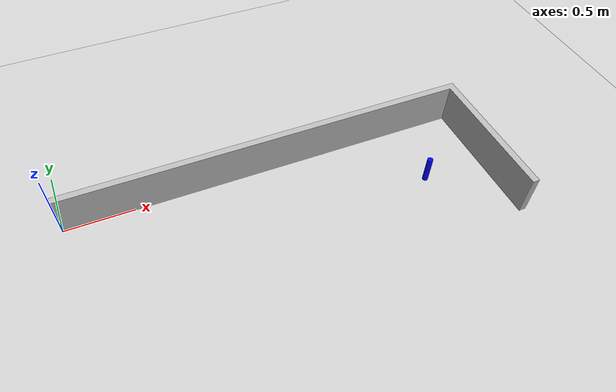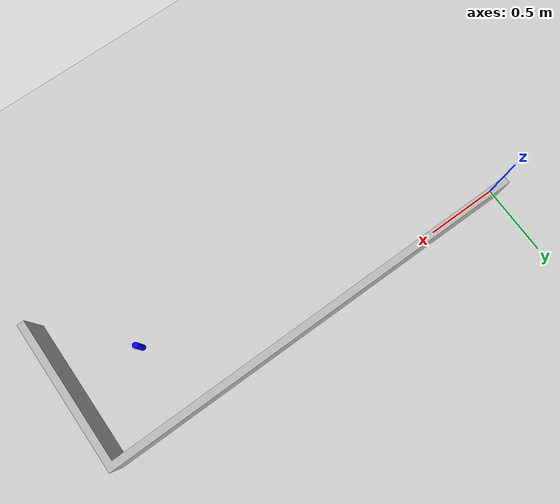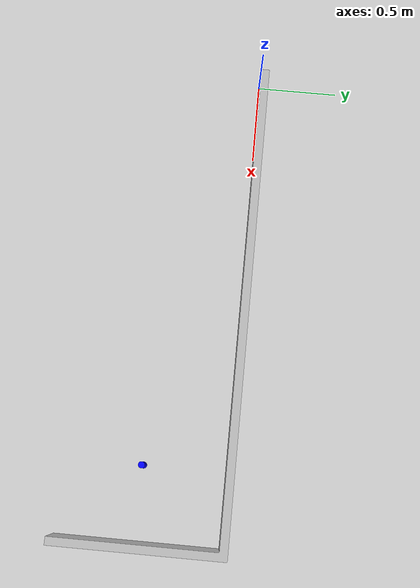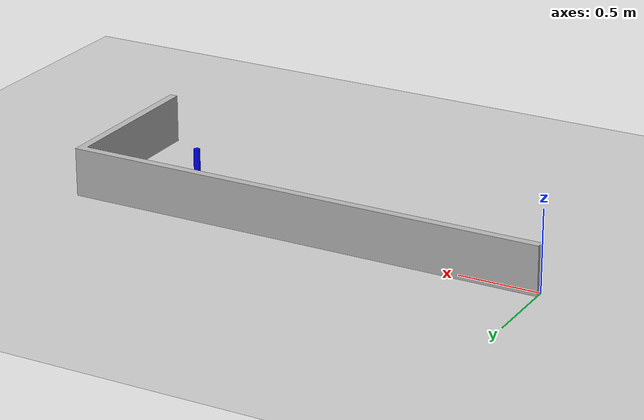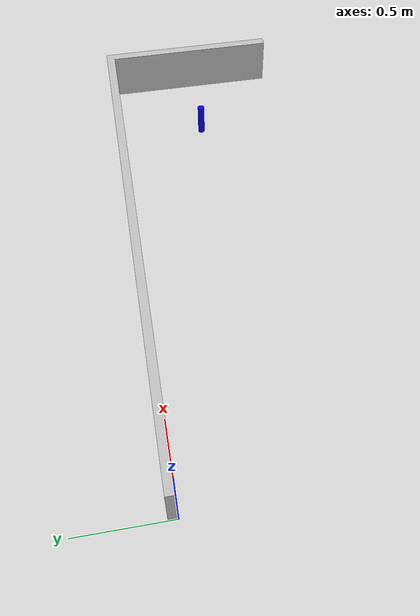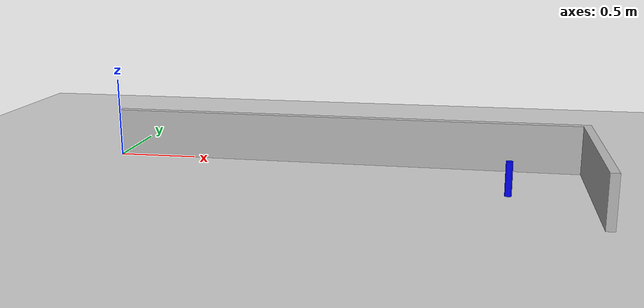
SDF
<?xml version="1.0"?>
<sdf version="1.6">
  <world name="default">
    <physics type="ode">
      <real_time_update_rate>1000.0</real_time_update_rate>
      <max_step_size>0.001</max_step_size>
      <real_time_factor>1</real_time_factor>
      <ode>
        <solver>
          <type>quick</type>
          <iters>150</iters>
          <precon_iters>0</precon_iters>
          <sor>1.400000</sor>
          <use_dynamic_moi_rescaling>1</use_dynamic_moi_rescaling>
        </solver>
        <constraints>
          <cfm>0.00001</cfm>
          <erp>0.2</erp>
          <contact_max_correcting_vel>2000.000000</contact_max_correcting_vel>
          <contact_surface_layer>0.01000</contact_surface_layer>
        </constraints>
      </ode>
    </physics>

    <include>
      <uri>model://ground_plane</uri>
    </include>

    <include>
      <uri>model://sun</uri>
    </include>

    <include>
      <uri>model://my_map</uri>
      <static>true</static>
    </include>

 <!-- Graspable Cylinder -->
    <model name="grasp_cylinder">
      <pose> 2.5 -0.5 0.1 0 0 0</pose>
      <static>false</static>

      <link name="link">

        <inertial>
          <mass>0.2</mass>
          <inertia>
            <ixx>0.000083</ixx>
            <iyy>0.000083</iyy>
            <izz>0.000062</izz>
          </inertia>
        </inertial>

        <visual name="visual">
          <geometry>
            <cylinder>
              <radius>0.02</radius>
              <length>0.20</length>
            </cylinder>
          </geometry>
          <material>
            <ambient>0 0 1 1</ambient>
          </material>
        </visual>

        <collision name="collision">
          <geometry>
            <cylinder>
              <radius>0.03</radius>
              <length>0.20</length>
            </cylinder>
          </geometry>

          <surface>
            <friction>
              <ode>
                <mu>10</mu>
                <mu2>10</mu2>
              </ode>
            </friction>
          </surface>

        </collision>

      </link>
    </model>
  </world>
</sdf>

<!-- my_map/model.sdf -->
<sdf version="1.6">
  <model name="my_map">
    <static>true</static>
    <link name="map_link">

      <visual name="map_visual">
        <geometry>
          <mesh>
            <uri>model://my_map/meshes/expirement1map.stl</uri>
            <scale>0.001 0.001 0.001</scale>  <!-- Scaled down from solidworks -->
          </mesh>
        </geometry>
      </visual>

      <collision name="map_collision">
        <geometry>
          <mesh>
            <uri>model://my_map/meshes/expirement1map.stl</uri>
            <scale>0.001 0.001 0.001</scale>
          </mesh>
        </geometry>
      </collision>

    </link>
  </model>
</sdf>
